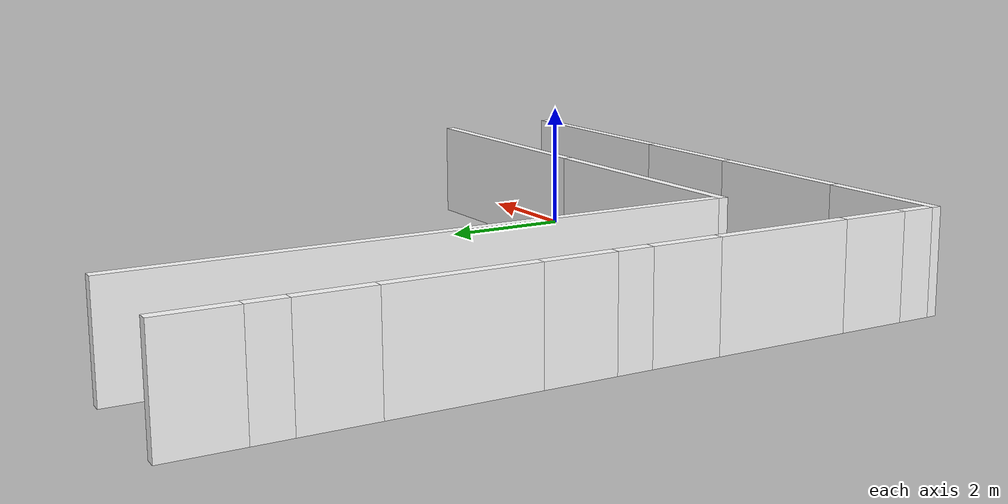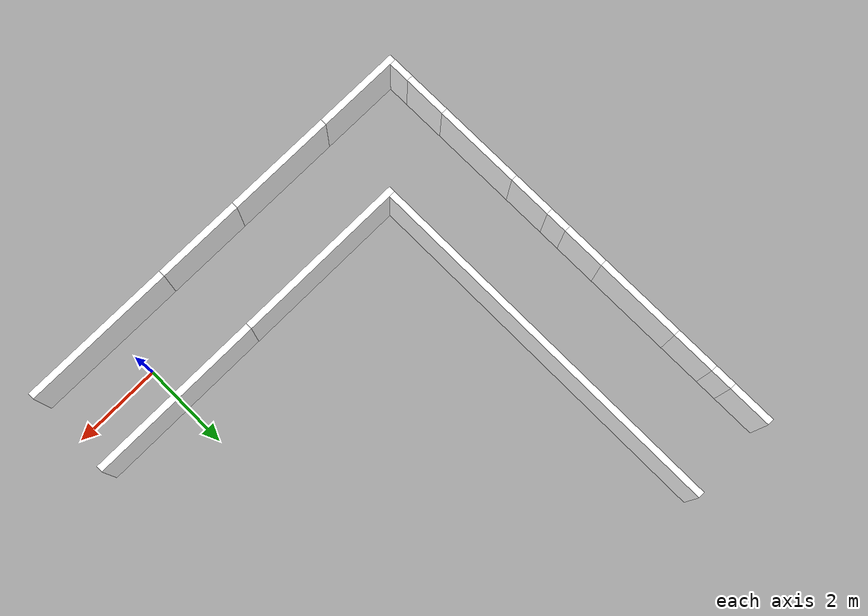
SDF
<?xml version='1.0'?>
<sdf version='1.6'>
  <model name='turtlebot_model_9'>
    <pose frame=''>-3.0055 4.25 0 0 -0 0</pose>
    <link name='Wall_0'>
      <collision name='Wall_0_Collision'>
        <geometry>
          <box>
            <size>4 0.15 1.5</size>
          </box>
        </geometry>
        <pose frame=''>0 0 0.75 0 -0 0</pose>
      </collision>
      <visual name='Wall_0_Visual'>
        <pose frame=''>0 0 0.75 0 -0 0</pose>
        <geometry>
          <box>
            <size>4 0.15 1.5</size>
          </box>
        </geometry>
        <material>
          <script>
            <uri>model://turtlebot_model_9/materials/scripts</uri>
            <uri>model://turtlebot_model_9/materials/textures</uri>
	    <name>wallTexture/Image</name>
          </script>
          <ambient>1 1 1 1</ambient>
        </material>
        <meta>
          <layer>0</layer>
        </meta>
      </visual>
      <pose frame=''>3.0005 -3.25 0 0 -0 0</pose>
    </link>
    <link name='Wall_19'>
      <collision name='Wall_19_Collision'>
        <geometry>
          <box>
            <size>2 0.15 1.5</size>
          </box>
        </geometry>
        <pose frame=''>0 0 0.75 0 -0 0</pose>
      </collision>
      <visual name='Wall_19_Visual'>
        <pose frame=''>0 0 0.75 0 -0 0</pose>
        <geometry>
          <box>
            <size>2 0.15 1.5</size>
          </box>
        </geometry>
        <material>
          <script>
            <uri>model://turtlebot_model_9/materials/scripts</uri>
            <uri>model://turtlebot_model_9/materials/textures</uri>
	    <name>doorTexture/Image</name>
          </script>
          <ambient>1 1 1 1</ambient>
        </material>
        <meta>
          <layer>0</layer>
        </meta>
      </visual>
      <pose frame=''>-4.0005 -5.25 0 0 -0 0</pose>
    </link>
    <link name='Wall_21'>
      <collision name='Wall_21_Collision'>
        <geometry>
          <box>
            <size>2.501 0.15 1.5</size>
          </box>
        </geometry>
        <pose frame=''>0 0 0.75 0 -0 0</pose>
      </collision>
      <visual name='Wall_21_Visual'>
        <pose frame=''>0 0 0.75 0 -0 0</pose>
        <geometry>
          <box>
            <size>2.501 0.15 1.5</size>
          </box>
        </geometry>
        <material>
          <script>
            <uri>model://turtlebot_model_9/materials/scripts</uri>
            <uri>model://turtlebot_model_9/materials/textures</uri>
	    <name>whiteTexture/Image</name>
          </script>
          <ambient>1 1 1 1</ambient>
        </material>
        <meta>
          <layer>0</layer>
        </meta>
      </visual>
      <pose frame=''>-1.75 -5.25 0 0 -0 0</pose>
    </link>
    <link name='Wall_23'>
      <collision name='Wall_23_Collision'>
        <geometry>
          <box>
            <size>0.5 0.15 1.5</size>
          </box>
        </geometry>
        <pose frame=''>0 0 0.75 0 -0 0</pose>
      </collision>
      <visual name='Wall_23_Visual'>
        <pose frame=''>0 0 0.75 0 -0 0</pose>
        <geometry>
          <box>
            <size>0.5 0.15 1.5</size>
          </box>
        </geometry>
        <material>
          <script>
            <uri>model://turtlebot_model_9/materials/scripts</uri>
            <uri>model://turtlebot_model_9/materials/textures</uri>
	    <name>whiteTexture/Image</name>
          </script>
          <ambient>1 1 1 1</ambient>
        </material>
        <meta>
          <layer>0</layer>
        </meta>
      </visual>
      <pose frame=''>-4.9255 -4.925 0 0 0 -1.5708</pose>
    </link>
    <link name='Wall_27'>
      <collision name='Wall_27_Collision'>
        <geometry>
          <box>
            <size>1 0.15 1.5</size>
          </box>
        </geometry>
        <pose frame=''>0 0 0.75 0 -0 0</pose>
      </collision>
      <visual name='Wall_27_Visual'>
        <pose frame=''>0 0 0.75 0 -0 0</pose>
        <geometry>
          <box>
            <size>1 0.15 1.5</size>
          </box>
        </geometry>
        <material>
          <script>
            <uri>model://turtlebot_model_9/materials/scripts</uri>
            <uri>model://turtlebot_model_9/materials/textures</uri>
	    <name>doorTexture/Image</name>
          </script>
          <ambient>1 1 1 1</ambient>
        </material>
        <meta>
          <layer>0</layer>
        </meta>
      </visual>
      <pose frame=''>-4.9255 -4.175 0 0 -0 1.5708</pose>
    </link>
    <link name='Wall_3'>
      <collision name='Wall_3_Collision'>
        <geometry>
          <box>
            <size>4 0.15 1.5</size>
          </box>
        </geometry>
        <pose frame=''>0 0 0.75 0 -0 0</pose>
      </collision>
      <visual name='Wall_3_Visual'>
        <pose frame=''>0 0 0.75 0 -0 0</pose>
        <geometry>
          <box>
            <size>4 0.15 1.5</size>
          </box>
        </geometry>
        <material>
          <script>
            <uri>model://turtlebot_model_9/materials/scripts</uri>
            <uri>model://turtlebot_model_9/materials/textures</uri>
	    <name>wallTexture/Image</name>
          </script>
          <ambient>1 1 1 1</ambient>
        </material>
        <meta>
          <layer>0</layer>
        </meta>
      </visual>
      <pose frame=''>-0.9995 -3.25 0 0 -0 3.14159</pose>
    </link>
    <link name='Wall_31'>
      <collision name='Wall_31_Collision'>
        <geometry>
          <box>
            <size>2 0.15 1.5</size>
          </box>
        </geometry>
        <pose frame=''>0 0 0.75 0 -0 0</pose>
      </collision>
      <visual name='Wall_31_Visual'>
        <pose frame=''>0 0 0.75 0 -0 0</pose>
        <geometry>
          <box>
            <size>2 0.15 1.5</size>
          </box>
        </geometry>
        <material>
          <script>
            <uri>model://turtlebot_model_9/materials/scripts</uri>
            <uri>model://turtlebot_model_9/materials/textures</uri>
	    <name>whiteTexture/Image</name>
          </script>
          <ambient>1 1 1 1</ambient>
        </material>
        <meta>
          <layer>0</layer>
        </meta>
      </visual>
      <pose frame=''>-4.9255 -2.675 0 0 -0 1.5708</pose>
    </link>
    <link name='Wall_33'>
      <collision name='Wall_33_Collision'>
        <geometry>
          <box>
            <size>1 0.15 1.5</size>
          </box>
        </geometry>
        <pose frame=''>0 0 0.75 0 -0 0</pose>
      </collision>
      <visual name='Wall_33_Visual'>
        <pose frame=''>0 0 0.75 0 -0 0</pose>
        <geometry>
          <box>
            <size>1 0.15 1.5</size>
          </box>
        </geometry>
        <material>
          <script>
            <uri>model://turtlebot_model_9/materials/scripts</uri>
            <uri>model://turtlebot_model_9/materials/textures</uri>
	    <name>doorTexture/Image</name>
          </script>
          <ambient>1 1 1 1</ambient>
        </material>
        <meta>
          <layer>0</layer>
        </meta>
      </visual>
      <pose frame=''>-4.9255 -1.175 0 0 -0 1.5708</pose>
    </link>
    <link name='Wall_35'>
      <collision name='Wall_35_Collision'>
        <geometry>
          <box>
            <size>0.5 0.15 1.5</size>
          </box>
        </geometry>
        <pose frame=''>0 0 0.75 0 -0 0</pose>
      </collision>
      <visual name='Wall_35_Visual'>
        <pose frame=''>0 0 0.75 0 -0 0</pose>
        <geometry>
          <box>
            <size>0.5 0.15 1.5</size>
          </box>
        </geometry>
        <material>
          <script>
            <uri>model://turtlebot_model_9/materials/scripts</uri>
            <uri>model://turtlebot_model_9/materials/textures</uri>
	    <name>whiteTexture/Image</name>
          </script>
          <ambient>1 1 1 1</ambient>
        </material>
        <meta>
          <layer>0</layer>
        </meta>
      </visual>
      <pose frame=''>-4.9255 -0.425 0 0 -0 1.5708</pose>
    </link>
    <link name='Wall_37'>
      <collision name='Wall_37_Collision'>
        <geometry>
          <box>
            <size>1 0.15 1.5</size>
          </box>
        </geometry>
        <pose frame=''>0 0 0.75 0 -0 0</pose>
      </collision>
      <visual name='Wall_37_Visual'>
        <pose frame=''>0 0 0.75 0 -0 0</pose>
        <geometry>
          <box>
            <size>1 0.15 1.5</size>
          </box>
        </geometry>
        <material>
          <script>
            <uri>model://turtlebot_model_9/materials/scripts</uri>
            <uri>model://turtlebot_model_9/materials/textures</uri>
	    <name>doorTexture/Image</name>
          </script>
          <ambient>1 1 1 1</ambient>
        </material>
        <meta>
          <layer>0</layer>
        </meta>
      </visual>
      <pose frame=''>-4.9255 0.324999 0 0 -0 1.5708</pose>
    </link>
    <link name='Wall_39'>
      <collision name='Wall_39_Collision'>
        <geometry>
          <box>
            <size>2 0.15 1.5</size>
          </box>
        </geometry>
        <pose frame=''>0 0 0.75 0 -0 0</pose>
      </collision>
      <visual name='Wall_39_Visual'>
        <pose frame=''>0 0 0.75 0 -0 0</pose>
        <geometry>
          <box>
            <size>2 0.15 1.5</size>
          </box>
        </geometry>
        <material>
          <script>
            <uri>model://turtlebot_model_9/materials/scripts</uri>
            <uri>model://turtlebot_model_9/materials/textures</uri>
	    <name>whiteTexture/Image</name>
          </script>
          <ambient>1 1 1 1</ambient>
        </material>
        <meta>
          <layer>0</layer>
        </meta>
      </visual>
      <pose frame=''>-4.9255 1.825 0 0 -0 1.5708</pose>
    </link>
    <link name='Wall_42'>
      <collision name='Wall_42_Collision'>
        <geometry>
          <box>
            <size>1 0.15 1.5</size>
          </box>
        </geometry>
        <pose frame=''>0 0 0.75 0 -0 0</pose>
      </collision>
      <visual name='Wall_42_Visual'>
        <pose frame=''>0 0 0.75 0 -0 0</pose>
        <geometry>
          <box>
            <size>1 0.15 1.5</size>
          </box>
        </geometry>
        <material>
          <script>
            <uri>model://turtlebot_model_9/materials/scripts</uri>
            <uri>model://turtlebot_model_9/materials/textures</uri>
	    <name>doorTexture/Image</name>
          </script>
          <ambient>1 1 1 1</ambient>
        </material>
        <meta>
          <layer>0</layer>
        </meta>
      </visual>
      <pose frame=''>-4.9255 3.325 0 0 -0 1.5708</pose>
    </link>
    <link name='Wall_44'>
      <collision name='Wall_44_Collision'>
        <geometry>
          <box>
            <size>0.5 0.15 1.5</size>
          </box>
        </geometry>
        <pose frame=''>0 0 0.75 0 -0 0</pose>
      </collision>
      <visual name='Wall_44_Visual'>
        <pose frame=''>0 0 0.75 0 -0 0</pose>
        <geometry>
          <box>
            <size>0.5 0.15 1.5</size>
          </box>
        </geometry>
        <material>
          <script>
            <uri>model://turtlebot_model_9/materials/scripts</uri>
            <uri>model://turtlebot_model_9/materials/textures</uri>
	    <name>whiteTexture/Image</name>
          </script>
          <ambient>1 1 1 1</ambient>
        </material>
        <meta>
          <layer>0</layer>
        </meta>
      </visual>
      <pose frame=''>-4.9255 4.075 0 0 -0 1.5708</pose>
    </link>
    <link name='Wall_47'>
      <collision name='Wall_47_Collision'>
        <geometry>
          <box>
            <size>1 0.15 1.5</size>
          </box>
        </geometry>
        <pose frame=''>0 0 0.75 0 -0 0</pose>
      </collision>
      <visual name='Wall_47_Visual'>
        <pose frame=''>0 0 0.75 0 -0 0</pose>
        <geometry>
          <box>
            <size>1 0.15 1.5</size>
          </box>
        </geometry>
        <material>
          <script>
            <uri>model://turtlebot_model_9/materials/scripts</uri>
            <uri>model://turtlebot_model_9/materials/textures</uri>
	    <name>doorTexture/Image</name>
          </script>
          <ambient>1 1 1 1</ambient>
        </material>
        <meta>
          <layer>0</layer>
        </meta>
      </visual>
      <pose frame=''>-4.9255 4.825 0 0 -0 1.5708</pose>
    </link>
    <link name='Wall_5'>
      <collision name='Wall_5_Collision'>
        <geometry>
          <box>
            <size>8.5 0.15 1.5</size>
          </box>
        </geometry>
        <pose frame=''>0 0 0.75 0 -0 0</pose>
      </collision>
      <visual name='Wall_5_Visual'>
        <pose frame=''>0 0 0.75 0 -0 0</pose>
        <geometry>
          <box>
            <size>8.5 0.15 1.5</size>
          </box>
        </geometry>
        <material>
          <script>
            <uri>model://turtlebot_model_9/materials/scripts</uri>
            <uri>model://turtlebot_model_9/materials/textures</uri>
	    <name>whiteTexture/Image</name>
          </script>
          <ambient>1 1 1 1</ambient>
        </material>
        <meta>
          <layer>0</layer>
        </meta>
      </visual>
      <pose frame=''>-2.9245 1.075 0 0 -0 1.5708</pose>
    </link>
    <link name='Wall_7'>
      <collision name='Wall_7_Collision'>
        <geometry>
          <box>
            <size>3.5 0.15 1.5</size>
          </box>
        </geometry>
        <pose frame=''>0 0 0.75 0 -0 0</pose>
      </collision>
      <visual name='Wall_7_Visual'>
        <pose frame=''>0 0 0.75 0 -0 0</pose>
        <geometry>
          <box>
            <size>3.5 0.15 1.5</size>
          </box>
        </geometry>
        <material>
          <script>
            <uri>model://turtlebot_model_9/materials/scripts</uri>
            <uri>model://turtlebot_model_9/materials/textures</uri>
	    <name>whiteTexture/Image</name>
          </script>
          <ambient>1 1 1 1</ambient>
        </material>
        <meta>
          <layer>0</layer>
        </meta>
      </visual>
      <pose frame=''>3.2505 -5.25 0 0 -0 3.14159</pose>
    </link>
    <link name='Wall_9'>
      <collision name='Wall_9_Collision'>
        <geometry>
          <box>
            <size>2 0.15 1.5</size>
          </box>
        </geometry>
        <pose frame=''>0 0 0.75 0 -0 0</pose>
      </collision>
      <visual name='Wall_9_Visual'>
        <pose frame=''>0 0 0.75 0 -0 0</pose>
        <geometry>
          <box>
            <size>2 0.15 1.5</size>
          </box>
        </geometry>
        <material>
          <script>
            <uri>model://turtlebot_model_9/materials/scripts</uri>
            <uri>model://turtlebot_model_9/materials/textures</uri>
	    <name>doorTexture/Image</name>
          </script>
          <ambient>1 1 1 1</ambient>
        </material>
        <meta>
          <layer>0</layer>
        </meta>
      </visual>
      <pose frame=''>0.5005 -5.25 0 0 -0 3.14159</pose>
    </link>
    <static>1</static>
  </model>
</sdf>
